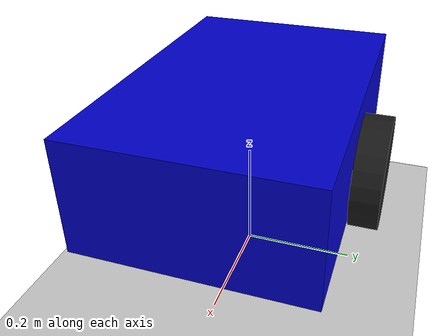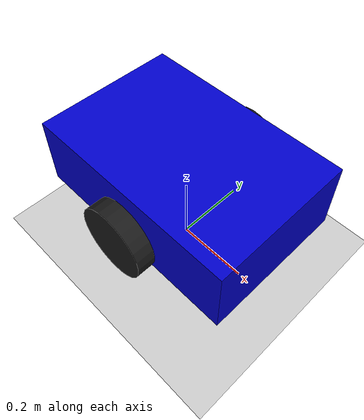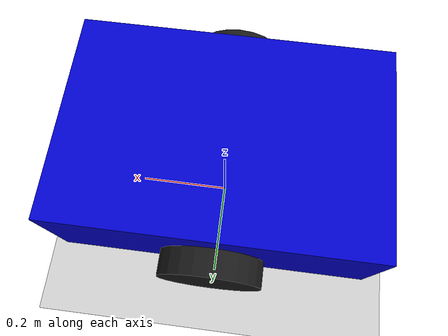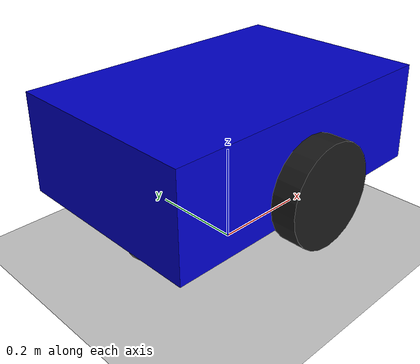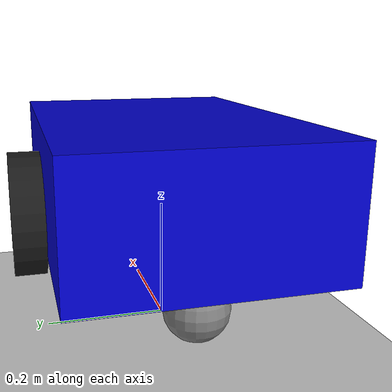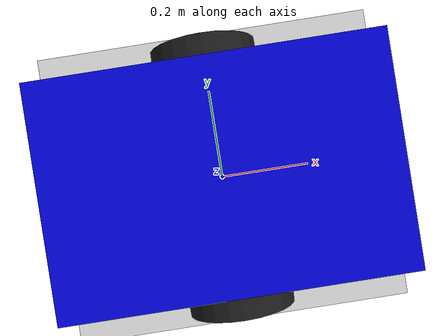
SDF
<?xml version="1.0" ?>
<sdf version="1.6">
  <world name="default">

    <!-- Física -->
    <physics type="ode">
      <max_step_size>0.001</max_step_size>
      <real_time_factor>1</real_time_factor>
      <real_time_update_rate>1000</real_time_update_rate>
    </physics>

    <!-- Iluminação -->
    <include>
      <uri>model://sun</uri>
    </include>

    <!-- Chão -->
    <include>
      <uri>model://ground_plane</uri>
    </include>

    <!-- Gravidade -->
    <gravity>0 0 -9.8</gravity>

    <!-- Modelo do Robô -->
    <model name="simple_robot">
      <pose>0 0 0.15 0 0 0</pose>
      <static>false</static>

      <!-- Base Footprint -->
      <link name="base_footprint"/>

      <!-- Base Link -->
      <link name="base_link">
        <pose relative_to="base_footprint">0 0 0.1 0 0 0</pose>

        <inertial>
          <mass>10. 0</mass>
          <inertia>
            <ixx>0.4</ixx>
            <ixy>0.0</ixy>
            <ixz>0.0</ixz>
            <iyy>0.4</iyy>
            <iyz>0.0</iyz>
            <izz>0.4</izz>
          </inertia>
        </inertial>

        <collision name="base_collision">
          <geometry>
            <box>
              <size>0.6 0.4 0.2</size>
            </box>
          </geometry>
        </collision>

        <visual name="base_visual">
          <geometry>
            <box>
              <size>0.6 0.4 0.2</size>
            </box>
          </geometry>
          <material>
            <ambient>0 0 0.8 1</ambient>
            <diffuse>0 0 0.8 1</diffuse>
          </material>
        </visual>
      </link>

      <!-- Roda Esquerda -->
      <link name="left_wheel">
        <pose relative_to="base_link">0 0.225 -0.05 -1.5707 0 0</pose>

        <inertial>
          <mass>1.0</mass>
          <inertia>
            <ixx>0.005</ixx>
            <ixy>0.0</ixy>
            <ixz>0.0</ixz>
            <iyy>0.005</iyy>
            <iyz>0.0</iyz>
            <izz>0.005</izz>
          </inertia>
        </inertial>

        <collision name="left_wheel_collision">
          <geometry>
            <cylinder>
              <radius>0.1</radius>
              <length>0.05</length>
            </cylinder>
          </geometry>
          <surface>
            <friction>
              <ode>
                <mu>1.0</mu>
                <mu2>1.0</mu2>
              </ode>
            </friction>
          </surface>
        </collision>

        <visual name="left_wheel_visual">
          <geometry>
            <cylinder>
              <radius>0.1</radius>
              <length>0.05</length>
            </cylinder>
          </geometry>
          <material>
            <ambient>0.1 0.1 0.1 1</ambient>
            <diffuse>0.1 0.1 0.1 1</diffuse>
          </material>
        </visual>
      </link>

      <!-- Roda Direita -->
      <link name="right_wheel">
        <pose relative_to="base_link">0 -0.225 -0.05 -1.5707 0 0</pose>

        <inertial>
          <mass>1.0</mass>
          <inertia>
            <ixx>0.005</ixx>
            <ixy>0.0</ixy>
            <ixz>0.0</ixz>
            <iyy>0.005</iyy>
            <iyz>0.0</iyz>
            <izz>0.005</izz>
          </inertia>
        </inertial>

        <collision name="right_wheel_collision">
          <geometry>
            <cylinder>
              <radius>0.1</radius>
              <length>0.05</length>
            </cylinder>
          </geometry>
          <surface>
            <friction>
              <ode>
                <mu>1.0</mu>
                <mu2>1.0</mu2>
              </ode>
            </friction>
          </surface>
        </collision>

        <visual name="right_wheel_visual">
          <geometry>
            <cylinder>
              <radius>0.1</radius>
              <length>0.05</length>
            </cylinder>
          </geometry>
          <material>
            <ambient>0.1 0.1 0.1 1</ambient>
            <diffuse>0.1 0.1 0.1 1</diffuse>
          </material>
        </visual>
      </link>

      <!-- Roda Caster (apoio) -->
      <link name="caster_wheel">
        <pose relative_to="base_link">-0.2 0 -0.15 0 0 0</pose>

        <inertial>
          <mass>0.5</mass>
          <inertia>
            <ixx>0.001</ixx>
            <ixy>0.0</ixy>
            <ixz>0.0</ixz>
            <iyy>0.001</iyy>
            <iyz>0.0</iyz>
            <izz>0.001</izz>
          </inertia>
        </inertial>

        <collision name="caster_collision">
          <geometry>
            <sphere>
              <radius>0.05</radius>
            </sphere>
          </geometry>
          <surface>
            <friction>
              <ode>
                <mu>0.0</mu>
                <mu2>0.0</mu2>
              </ode>
            </friction>
          </surface>
        </collision>

        <visual name="caster_visual">
          <geometry>
            <sphere>
              <radius>0.05</radius>
            </sphere>
          </geometry>
          <material>
            <ambient>0.5 0.5 0.5 1</ambient>
            <diffuse>0.5 0.5 0.5 1</diffuse>
          </material>
        </visual>
      </link>

      <!-- Juntas -->
      <joint name="base_joint" type="fixed">
        <parent>base_footprint</parent>
        <child>base_link</child>
      </joint>

      <joint name="left_wheel_joint" type="revolute">
        <parent>base_link</parent>
        <child>left_wheel</child>
        <axis>
          <xyz>0 0 1</xyz>
        </axis>
      </joint>

      <joint name="right_wheel_joint" type="revolute">
        <parent>base_link</parent>
        <child>right_wheel</child>
        <axis>
          <xyz>0 0 1</xyz>
        </axis>
      </joint>

      <joint name="caster_wheel_joint" type="fixed">
        <parent>base_link</parent>
        <child>caster_wheel</child>
      </joint>

      <!-- Plugin de controle diferencial -->
      <plugin name="differential_drive_controller" filename="libgazebo_ros_diff_drive. so">
        <update_rate>50</update_rate>
        <left_joint>left_wheel_joint</left_joint>
        <right_joint>right_wheel_joint</right_joint>
        <wheel_separation>0.45</wheel_separation>
        <wheel_diameter>0.2</wheel_diameter>
        <max_wheel_torque>20</max_wheel_torque>
        <max_wheel_acceleration>1.0</max_wheel_acceleration>
        <command_topic>cmd_vel</command_topic>
        <publish_odom>true</publish_odom>
        <publish_odom_tf>true</publish_odom_tf>
        <publish_wheel_tf>false</publish_wheel_tf>
        <odometry_topic>odom</odometry_topic>
        <odometry_frame>odom</odometry_frame>
        <robot_base_frame>base_footprint</robot_base_frame>
      </plugin>

    </model>

  </world>
</sdf>
